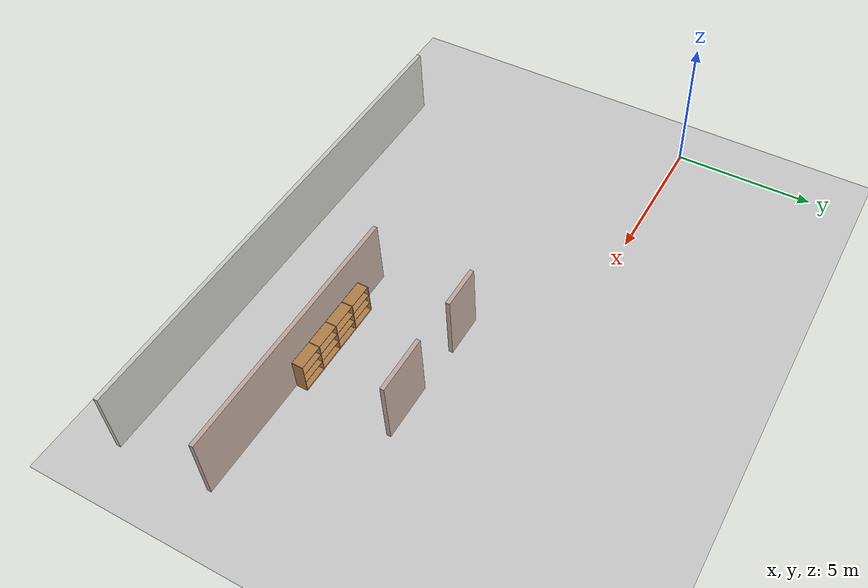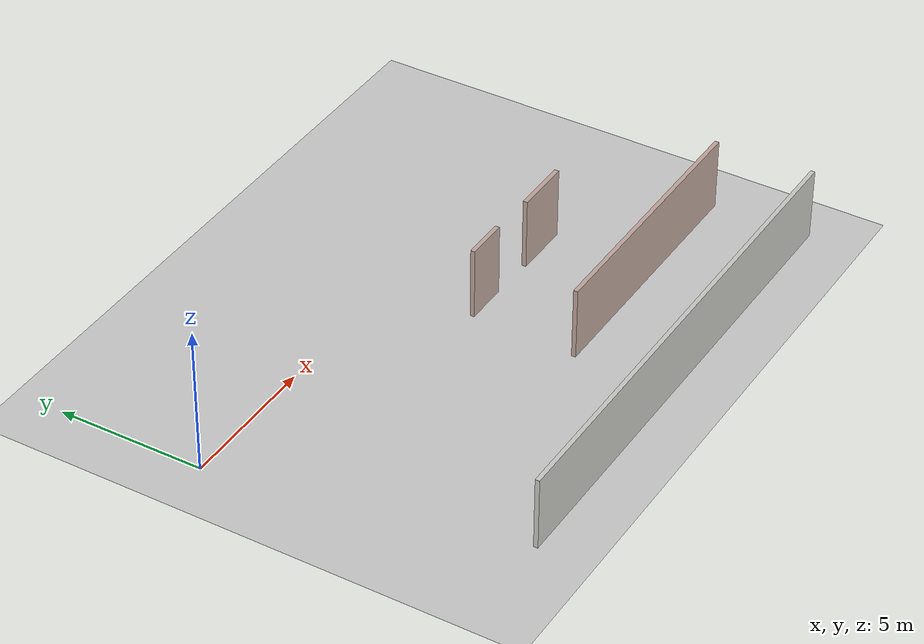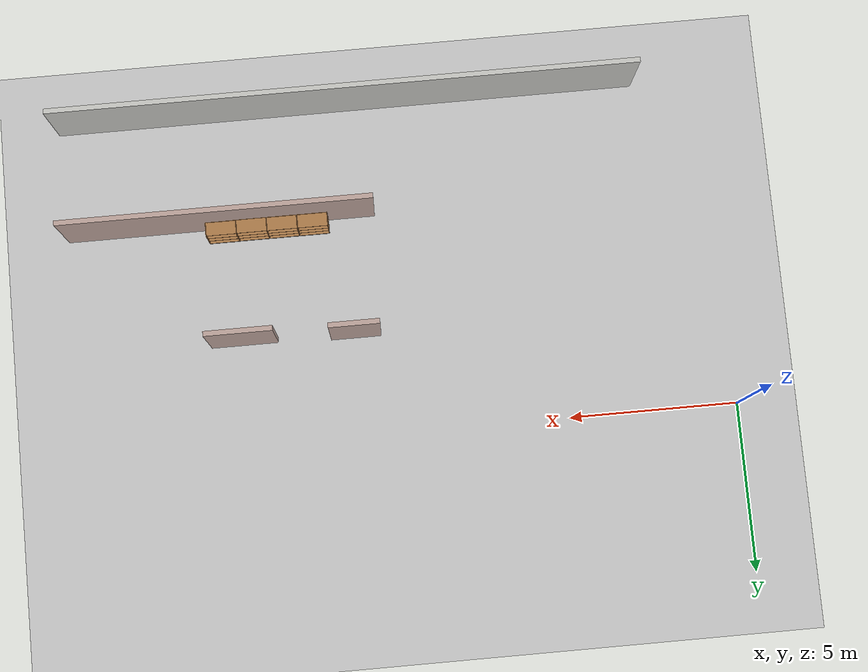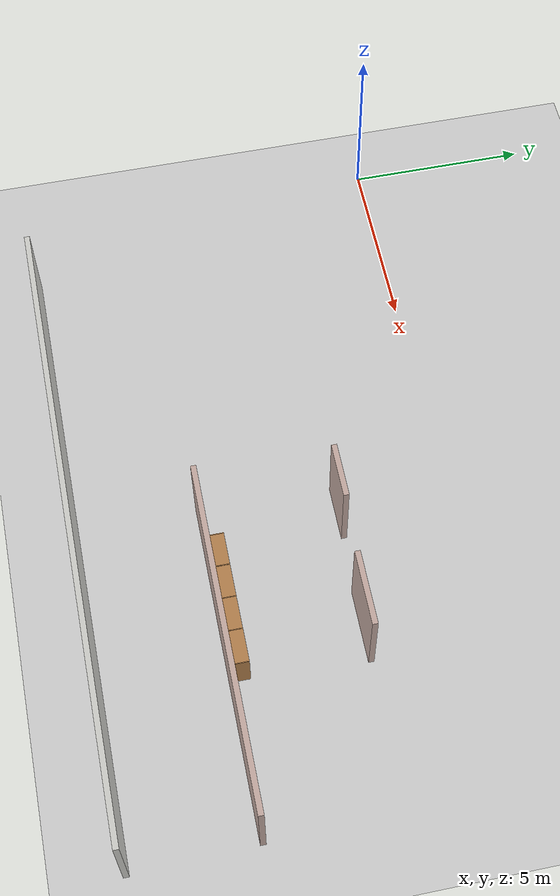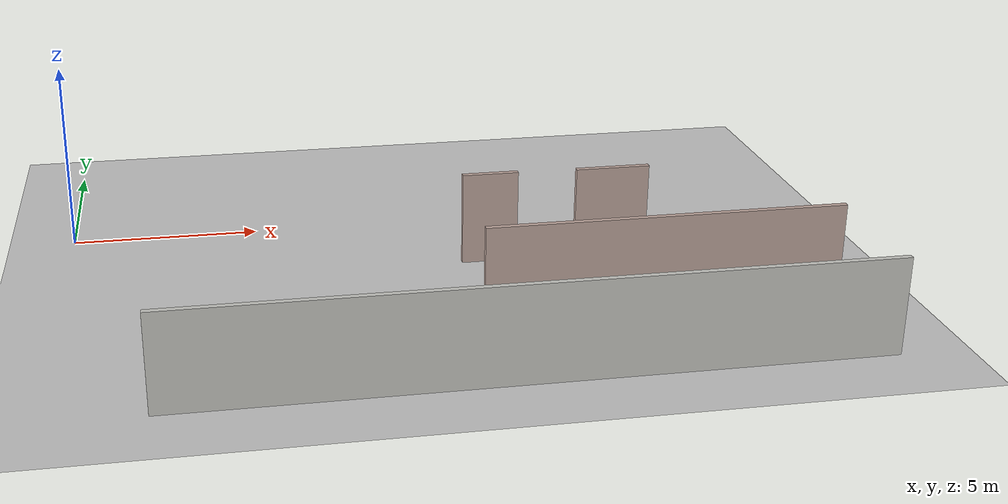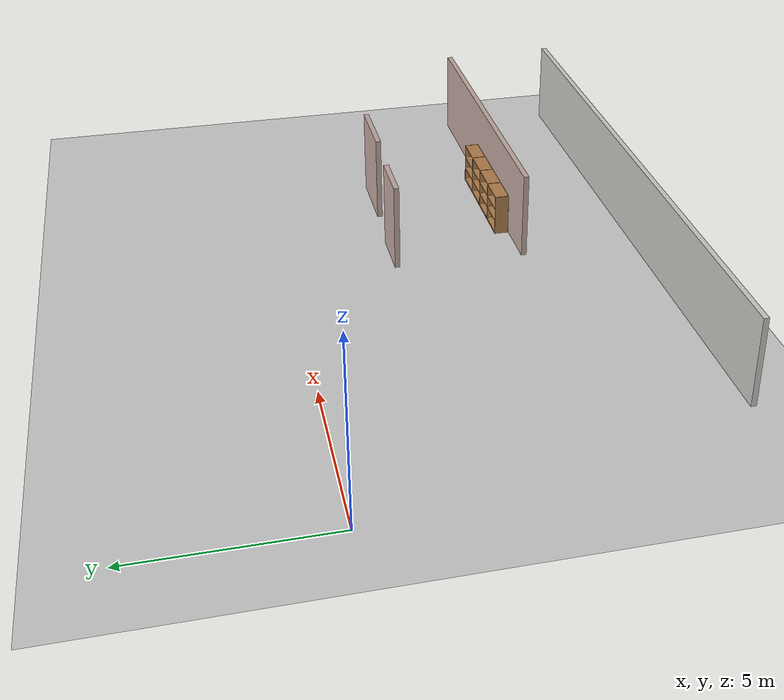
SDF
<sdf version="1.6">
 <world name="default">
  <model name="ground_plane">
   <static>1</static>
   <link name="link">
    <collision name="collision">
     <geometry><plane><normal>0 0 1</normal><size>100 100</size></plane></geometry>
     <surface><friction><ode><mu>100</mu><mu2>50</mu2></ode></friction></surface>
    </collision>
    <visual name="visual">
     <cast_shadows>0</cast_shadows>
     <geometry><plane><normal>0 0 1</normal><size>100 100</size></plane></geometry>
     <material>
      <script><uri>file://media/materials/scripts/gazebo.material</uri><name>Gazebo/Grey</name></script>
     </material>
    </visual>
   </link>
  </model>
  <model name="floor">
   <link name="Wall_113">
    <pose>9.60314 -8.79868 0 0 -0 0</pose>
    <visual name="Wall_113_Visual">
     <pose>0 0 1.25 0 -0 0</pose>
     <geometry><box><size>17.5 0.15 2.5</size></box></geometry>
     <material>
      <script><uri>file://media/materials/scripts/gazebo.material</uri><name>Gazebo/CeilingTiled</name></script>
      <ambient>0.760784 0.662745 0.627451 1</ambient>
     </material>
     <meta><layer>0</layer></meta>
    </visual>
    <collision name="Wall_113_Collision">
     <pose>0 0 1.25 0 -0 0</pose>
     <geometry><box><size>17.5 0.15 2.5</size></box></geometry>
     <surface>
      <friction>
       <ode><mu>1</mu><mu2>1</mu2><fdir1>0 0 0</fdir1><slip1>0</slip1><slip2>0</slip2></ode>
       <torsional>
        <coefficient>1</coefficient>
        <patch_radius>0</patch_radius>
        <surface_radius>0</surface_radius>
        <use_patch_radius>1</use_patch_radius>
        <ode><slip>0</slip></ode>
       </torsional>
      </friction>
      <bounce><restitution_coefficient>0</restitution_coefficient><threshold>1e+06</threshold></bounce>
      <contact>
       <collide_without_contact>0</collide_without_contact>
       <collide_without_contact_bitmask>1</collide_without_contact_bitmask>
       <collide_bitmask>1</collide_bitmask>
       <ode>
        <soft_cfm>0</soft_cfm>
        <soft_erp>0.2</soft_erp>
        <kp>1e+13</kp>
        <kd>1</kd>
        <max_vel>0.01</max_vel>
        <min_depth>0</min_depth>
       </ode>
       <bullet>
        <split_impulse>1</split_impulse>
        <split_impulse_penetration_threshold>-0.01</split_impulse_penetration_threshold>
        <soft_cfm>0</soft_cfm>
        <soft_erp>0.2</soft_erp>
        <kp>1e+13</kp>
        <kd>1</kd>
       </bullet>
      </contact>
     </surface>
    </collision>
   </link>
   <link name="Wall_84">
    <pose>13.6227 -5.45292 0 0 -0 0</pose>
    <visual name="Wall_84_Visual">
     <pose>0 0 1.25 0 -0 0</pose>
     <geometry><box><size>9.25 0.15 2.5</size></box></geometry>
     <material>
      <script><uri>file://media/materials/scripts/gazebo.material</uri><name>Gazebo/Grey</name></script>
      <ambient>0.760784 0.662745 0.627451 1</ambient>
     </material>
     <meta><layer>0</layer></meta>
    </visual>
    <collision name="Wall_84_Collision">
     <pose>0 0 1.25 0 -0 0</pose>
     <geometry><box><size>9.25 0.15 2.5</size></box></geometry>
     <surface>
      <friction>
       <ode><mu>1</mu><mu2>1</mu2><fdir1>0 0 0</fdir1><slip1>0</slip1><slip2>0</slip2></ode>
       <torsional>
        <coefficient>1</coefficient>
        <patch_radius>0</patch_radius>
        <surface_radius>0</surface_radius>
        <use_patch_radius>1</use_patch_radius>
        <ode><slip>0</slip></ode>
       </torsional>
      </friction>
      <bounce><restitution_coefficient>0</restitution_coefficient><threshold>1e+06</threshold></bounce>
      <contact>
       <collide_without_contact>0</collide_without_contact>
       <collide_without_contact_bitmask>1</collide_without_contact_bitmask>
       <collide_bitmask>1</collide_bitmask>
       <ode>
        <soft_cfm>0</soft_cfm>
        <soft_erp>0.2</soft_erp>
        <kp>1e+13</kp>
        <kd>1</kd>
        <max_vel>0.01</max_vel>
        <min_depth>0</min_depth>
       </ode>
       <bullet>
        <split_impulse>1</split_impulse>
        <split_impulse_penetration_threshold>-0.01</split_impulse_penetration_threshold>
        <soft_cfm>0</soft_cfm>
        <soft_erp>0.2</soft_erp>
        <kp>1e+13</kp>
        <kd>1</kd>
       </bullet>
      </contact>
     </surface>
    </collision>
   </link>
   <link name="Wall_92">
    <pose>9.86715 -1.78176 0 0 -0 0</pose>
    <visual name="Wall_92_Visual">
     <pose>0 0 1.25 0 -0 0</pose>
     <geometry><box><size>1.5 0.15 2.5</size></box></geometry>
     <material>
      <script><uri>file://media/materials/scripts/gazebo.material</uri><name>Gazebo/Grey</name></script>
      <ambient>0.760784 0.662745 0.627451 1</ambient>
     </material>
     <meta><layer>0</layer></meta>
    </visual>
    <collision name="Wall_92_Collision">
     <pose>0 0 1.25 0 -0 0</pose>
     <geometry><box><size>1.5 0.15 2.5</size></box></geometry>
     <surface>
      <friction>
       <ode><mu>1</mu><mu2>1</mu2><fdir1>0 0 0</fdir1><slip1>0</slip1><slip2>0</slip2></ode>
       <torsional>
        <coefficient>1</coefficient>
        <patch_radius>0</patch_radius>
        <surface_radius>0</surface_radius>
        <use_patch_radius>1</use_patch_radius>
        <ode><slip>0</slip></ode>
       </torsional>
      </friction>
      <bounce><restitution_coefficient>0</restitution_coefficient><threshold>1e+06</threshold></bounce>
      <contact>
       <collide_without_contact>0</collide_without_contact>
       <collide_without_contact_bitmask>1</collide_without_contact_bitmask>
       <collide_bitmask>1</collide_bitmask>
       <ode>
        <soft_cfm>0</soft_cfm>
        <soft_erp>0.2</soft_erp>
        <kp>1e+13</kp>
        <kd>1</kd>
        <max_vel>0.01</max_vel>
        <min_depth>0</min_depth>
       </ode>
       <bullet>
        <split_impulse>1</split_impulse>
        <split_impulse_penetration_threshold>-0.01</split_impulse_penetration_threshold>
        <soft_cfm>0</soft_cfm>
        <soft_erp>0.2</soft_erp>
        <kp>1e+13</kp>
        <kd>1</kd>
       </bullet>
      </contact>
     </surface>
    </collision>
   </link>
   <link name="Wall_94">
    <pose>13.1977 -1.85292 0 0 -0 0</pose>
    <visual name="Wall_94_Visual">
     <pose>0 0 1.25 0 -0 0</pose>
     <geometry><box><size>2 0.15 2.5</size></box></geometry>
     <material>
      <script><uri>file://media/materials/scripts/gazebo.material</uri><name>Gazebo/Grey</name></script>
      <ambient>0.760784 0.662745 0.627451 1</ambient>
     </material>
     <meta><layer>0</layer></meta>
    </visual>
    <collision name="Wall_94_Collision">
     <pose>0 0 1.25 0 -0 0</pose>
     <geometry><box><size>2 0.15 2.5</size></box></geometry>
     <surface>
      <friction>
       <ode><mu>1</mu><mu2>1</mu2><fdir1>0 0 0</fdir1><slip1>0</slip1><slip2>0</slip2></ode>
       <torsional>
        <coefficient>1</coefficient>
        <patch_radius>0</patch_radius>
        <surface_radius>0</surface_radius>
        <use_patch_radius>1</use_patch_radius>
        <ode><slip>0</slip></ode>
       </torsional>
      </friction>
      <bounce><restitution_coefficient>0</restitution_coefficient><threshold>1e+06</threshold></bounce>
      <contact>
       <collide_without_contact>0</collide_without_contact>
       <collide_without_contact_bitmask>1</collide_without_contact_bitmask>
       <collide_bitmask>1</collide_bitmask>
       <ode>
        <soft_cfm>0</soft_cfm>
        <soft_erp>0.2</soft_erp>
        <kp>1e+13</kp>
        <kd>1</kd>
        <max_vel>0.01</max_vel>
        <min_depth>0</min_depth>
       </ode>
       <bullet>
        <split_impulse>1</split_impulse>
        <split_impulse_penetration_threshold>-0.01</split_impulse_penetration_threshold>
        <soft_cfm>0</soft_cfm>
        <soft_erp>0.2</soft_erp>
        <kp>1e+13</kp>
        <kd>1</kd>
       </bullet>
      </contact>
     </surface>
    </collision>
   </link>
   <static>1</static>
   <pose>1.26361 -1.27025 0 0 -0 0</pose>
  </model>
  <model name="Bookshelf-4_clone_15_clone_clone_0">
   <model name="bookshelf">
    <static>1</static>
    <link name="link">
     <inertial><mass>1</mass></inertial>
     <collision name="back">
      <pose>0 0.005 0.6 0 -0 0</pose>
      <geometry><box><size>0.9 0.01 1.2</size></box></geometry>
     </collision>
     <visual name="visual1">
      <pose>0 0.005 0.6 0 -0 0</pose>
      <geometry><box><size>0.9 0.01 1.2</size></box></geometry>
      <material>
       <script><uri>file://media/materials/scripts/gazebo.material</uri><name>Gazebo/Wood</name></script>
      </material>
     </visual>
     <collision name="left_side">
      <pose>0.45 -0.195 0.6 0 -0 0</pose>
      <geometry><box><size>0.02 0.4 1.2</size></box></geometry>
     </collision>
     <visual name="visual2">
      <pose>0.45 -0.195 0.6 0 -0 0</pose>
      <geometry><box><size>0.02 0.4 1.2</size></box></geometry>
      <material>
       <script><uri>file://media/materials/scripts/gazebo.material</uri><name>Gazebo/Wood</name></script>
      </material>
     </visual>
     <collision name="right_side">
      <pose>-0.45 -0.195 0.6 0 -0 0</pose>
      <geometry><box><size>0.02 0.4 1.2</size></box></geometry>
     </collision>
     <visual name="visual3">
      <pose>-0.45 -0.195 0.6 0 -0 0</pose>
      <geometry><box><size>0.02 0.4 1.2</size></box></geometry>
      <material>
       <script><uri>file://media/materials/scripts/gazebo.material</uri><name>Gazebo/Wood</name></script>
      </material>
     </visual>
     <collision name="bottom">
      <pose>0 -0.195 0.03 0 -0 0</pose>
      <geometry><box><size>0.88 0.4 0.06</size></box></geometry>
     </collision>
     <visual name="visual4">
      <pose>0 -0.195 0.03 0 -0 0</pose>
      <geometry><box><size>0.88 0.4 0.06</size></box></geometry>
      <material>
       <script><uri>file://media/materials/scripts/gazebo.material</uri><name>Gazebo/Wood</name></script>
      </material>
     </visual>
     <collision name="top">
      <pose>0 -0.195 1.19 0 -0 0</pose>
      <geometry><box><size>0.88 0.4 0.02</size></box></geometry>
     </collision>
     <visual name="visual5">
      <pose>0 -0.195 1.19 0 -0 0</pose>
      <geometry><box><size>0.88 0.4 0.02</size></box></geometry>
      <material>
       <script><uri>file://media/materials/scripts/gazebo.material</uri><name>Gazebo/Wood</name></script>
      </material>
     </visual>
     <collision name="low_shelf">
      <pose>0 -0.195 0.43 0 -0 0</pose>
      <geometry><box><size>0.88 0.4 0.02</size></box></geometry>
     </collision>
     <visual name="visual6">
      <pose>0 -0.195 0.43 0 -0 0</pose>
      <geometry><box><size>0.88 0.4 0.02</size></box></geometry>
      <material>
       <script><uri>file://media/materials/scripts/gazebo.material</uri><name>Gazebo/Wood</name></script>
      </material>
     </visual>
     <collision name="high_shelf">
      <pose>0 -0.195 0.8 0 -0 0</pose>
      <geometry><box><size>0.88 0.4 0.02</size></box></geometry>
     </collision>
     <visual name="visual7">
      <pose>0 -0.195 0.8 0 -0 0</pose>
      <geometry><box><size>0.88 0.4 0.02</size></box></geometry>
      <material>
       <script><uri>file://media/materials/scripts/gazebo.material</uri><name>Gazebo/Wood</name></script>
      </material>
     </visual>
    </link>
    <pose>-1.35671 -0.002097 0 0 -0 0</pose>
   </model>
   <model name="bookshelf_0">
    <static>1</static>
    <link name="link">
     <inertial><mass>1</mass></inertial>
     <collision name="back">
      <pose>0 0.005 0.6 0 -0 0</pose>
      <geometry><box><size>0.9 0.01 1.2</size></box></geometry>
     </collision>
     <visual name="visual1">
      <pose>0 0.005 0.6 0 -0 0</pose>
      <geometry><box><size>0.9 0.01 1.2</size></box></geometry>
      <material>
       <script><uri>file://media/materials/scripts/gazebo.material</uri><name>Gazebo/Wood</name></script>
      </material>
     </visual>
     <collision name="left_side">
      <pose>0.45 -0.195 0.6 0 -0 0</pose>
      <geometry><box><size>0.02 0.4 1.2</size></box></geometry>
     </collision>
     <visual name="visual2">
      <pose>0.45 -0.195 0.6 0 -0 0</pose>
      <geometry><box><size>0.02 0.4 1.2</size></box></geometry>
      <material>
       <script><uri>file://media/materials/scripts/gazebo.material</uri><name>Gazebo/Wood</name></script>
      </material>
     </visual>
     <collision name="right_side">
      <pose>-0.45 -0.195 0.6 0 -0 0</pose>
      <geometry><box><size>0.02 0.4 1.2</size></box></geometry>
     </collision>
     <visual name="visual3">
      <pose>-0.45 -0.195 0.6 0 -0 0</pose>
      <geometry><box><size>0.02 0.4 1.2</size></box></geometry>
      <material>
       <script><uri>file://media/materials/scripts/gazebo.material</uri><name>Gazebo/Wood</name></script>
      </material>
     </visual>
     <collision name="bottom">
      <pose>0 -0.195 0.03 0 -0 0</pose>
      <geometry><box><size>0.88 0.4 0.06</size></box></geometry>
     </collision>
     <visual name="visual4">
      <pose>0 -0.195 0.03 0 -0 0</pose>
      <geometry><box><size>0.88 0.4 0.06</size></box></geometry>
      <material>
       <script><uri>file://media/materials/scripts/gazebo.material</uri><name>Gazebo/Wood</name></script>
      </material>
     </visual>
     <collision name="top">
      <pose>0 -0.195 1.19 0 -0 0</pose>
      <geometry><box><size>0.88 0.4 0.02</size></box></geometry>
     </collision>
     <visual name="visual5">
      <pose>0 -0.195 1.19 0 -0 0</pose>
      <geometry><box><size>0.88 0.4 0.02</size></box></geometry>
      <material>
       <script><uri>file://media/materials/scripts/gazebo.material</uri><name>Gazebo/Wood</name></script>
      </material>
     </visual>
     <collision name="low_shelf">
      <pose>0 -0.195 0.43 0 -0 0</pose>
      <geometry><box><size>0.88 0.4 0.02</size></box></geometry>
     </collision>
     <visual name="visual6">
      <pose>0 -0.195 0.43 0 -0 0</pose>
      <geometry><box><size>0.88 0.4 0.02</size></box></geometry>
      <material>
       <script><uri>file://media/materials/scripts/gazebo.material</uri><name>Gazebo/Wood</name></script>
      </material>
     </visual>
     <collision name="high_shelf">
      <pose>0 -0.195 0.8 0 -0 0</pose>
      <geometry><box><size>0.88 0.4 0.02</size></box></geometry>
     </collision>
     <visual name="visual7">
      <pose>0 -0.195 0.8 0 -0 0</pose>
      <geometry><box><size>0.88 0.4 0.02</size></box></geometry>
      <material>
       <script><uri>file://media/materials/scripts/gazebo.material</uri><name>Gazebo/Wood</name></script>
      </material>
     </visual>
    </link>
    <pose>-0.452974 0.001386 0 0 -0 0</pose>
   </model>
   <model name="bookshelf_1">
    <static>1</static>
    <link name="link">
     <inertial><mass>1</mass></inertial>
     <collision name="back">
      <pose>0 0.005 0.6 0 -0 0</pose>
      <geometry><box><size>0.9 0.01 1.2</size></box></geometry>
     </collision>
     <visual name="visual1">
      <pose>0 0.005 0.6 0 -0 0</pose>
      <geometry><box><size>0.9 0.01 1.2</size></box></geometry>
      <material>
       <script><uri>file://media/materials/scripts/gazebo.material</uri><name>Gazebo/Wood</name></script>
      </material>
     </visual>
     <collision name="left_side">
      <pose>0.45 -0.195 0.6 0 -0 0</pose>
      <geometry><box><size>0.02 0.4 1.2</size></box></geometry>
     </collision>
     <visual name="visual2">
      <pose>0.45 -0.195 0.6 0 -0 0</pose>
      <geometry><box><size>0.02 0.4 1.2</size></box></geometry>
      <material>
       <script><uri>file://media/materials/scripts/gazebo.material</uri><name>Gazebo/Wood</name></script>
      </material>
     </visual>
     <collision name="right_side">
      <pose>-0.45 -0.195 0.6 0 -0 0</pose>
      <geometry><box><size>0.02 0.4 1.2</size></box></geometry>
     </collision>
     <visual name="visual3">
      <pose>-0.45 -0.195 0.6 0 -0 0</pose>
      <geometry><box><size>0.02 0.4 1.2</size></box></geometry>
      <material>
       <script><uri>file://media/materials/scripts/gazebo.material</uri><name>Gazebo/Wood</name></script>
      </material>
     </visual>
     <collision name="bottom">
      <pose>0 -0.195 0.03 0 -0 0</pose>
      <geometry><box><size>0.88 0.4 0.06</size></box></geometry>
     </collision>
     <visual name="visual4">
      <pose>0 -0.195 0.03 0 -0 0</pose>
      <geometry><box><size>0.88 0.4 0.06</size></box></geometry>
      <material>
       <script><uri>file://media/materials/scripts/gazebo.material</uri><name>Gazebo/Wood</name></script>
      </material>
     </visual>
     <collision name="top">
      <pose>0 -0.195 1.19 0 -0 0</pose>
      <geometry><box><size>0.88 0.4 0.02</size></box></geometry>
     </collision>
     <visual name="visual5">
      <pose>0 -0.195 1.19 0 -0 0</pose>
      <geometry><box><size>0.88 0.4 0.02</size></box></geometry>
      <material>
       <script><uri>file://media/materials/scripts/gazebo.material</uri><name>Gazebo/Wood</name></script>
      </material>
     </visual>
     <collision name="low_shelf">
      <pose>0 -0.195 0.43 0 -0 0</pose>
      <geometry><box><size>0.88 0.4 0.02</size></box></geometry>
     </collision>
     <visual name="visual6">
      <pose>0 -0.195 0.43 0 -0 0</pose>
      <geometry><box><size>0.88 0.4 0.02</size></box></geometry>
      <material>
       <script><uri>file://media/materials/scripts/gazebo.material</uri><name>Gazebo/Wood</name></script>
      </material>
     </visual>
     <collision name="high_shelf">
      <pose>0 -0.195 0.8 0 -0 0</pose>
      <geometry><box><size>0.88 0.4 0.02</size></box></geometry>
     </collision>
     <visual name="visual7">
      <pose>0 -0.195 0.8 0 -0 0</pose>
      <geometry><box><size>0.88 0.4 0.02</size></box></geometry>
      <material>
       <script><uri>file://media/materials/scripts/gazebo.material</uri><name>Gazebo/Wood</name></script>
      </material>
     </visual>
    </link>
    <pose>0.450456 0.000733 0 0 -0 0</pose>
   </model>
   <model name="bookshelf_2">
    <static>1</static>
    <link name="link">
     <inertial><mass>1</mass></inertial>
     <collision name="back">
      <pose>0 0.005 0.6 0 -0 0</pose>
      <geometry><box><size>0.9 0.01 1.2</size></box></geometry>
     </collision>
     <visual name="visual1">
      <pose>0 0.005 0.6 0 -0 0</pose>
      <geometry><box><size>0.9 0.01 1.2</size></box></geometry>
      <material>
       <script><uri>file://media/materials/scripts/gazebo.material</uri><name>Gazebo/Wood</name></script>
      </material>
     </visual>
     <collision name="left_side">
      <pose>0.45 -0.195 0.6 0 -0 0</pose>
      <geometry><box><size>0.02 0.4 1.2</size></box></geometry>
     </collision>
     <visual name="visual2">
      <pose>0.45 -0.195 0.6 0 -0 0</pose>
      <geometry><box><size>0.02 0.4 1.2</size></box></geometry>
      <material>
       <script><uri>file://media/materials/scripts/gazebo.material</uri><name>Gazebo/Wood</name></script>
      </material>
     </visual>
     <collision name="right_side">
      <pose>-0.45 -0.195 0.6 0 -0 0</pose>
      <geometry><box><size>0.02 0.4 1.2</size></box></geometry>
     </collision>
     <visual name="visual3">
      <pose>-0.45 -0.195 0.6 0 -0 0</pose>
      <geometry><box><size>0.02 0.4 1.2</size></box></geometry>
      <material>
       <script><uri>file://media/materials/scripts/gazebo.material</uri><name>Gazebo/Wood</name></script>
      </material>
     </visual>
     <collision name="bottom">
      <pose>0 -0.195 0.03 0 -0 0</pose>
      <geometry><box><size>0.88 0.4 0.06</size></box></geometry>
     </collision>
     <visual name="visual4">
      <pose>0 -0.195 0.03 0 -0 0</pose>
      <geometry><box><size>0.88 0.4 0.06</size></box></geometry>
      <material>
       <script><uri>file://media/materials/scripts/gazebo.material</uri><name>Gazebo/Wood</name></script>
      </material>
     </visual>
     <collision name="top">
      <pose>0 -0.195 1.19 0 -0 0</pose>
      <geometry><box><size>0.88 0.4 0.02</size></box></geometry>
     </collision>
     <visual name="visual5">
      <pose>0 -0.195 1.19 0 -0 0</pose>
      <geometry><box><size>0.88 0.4 0.02</size></box></geometry>
      <material>
       <script><uri>file://media/materials/scripts/gazebo.material</uri><name>Gazebo/Wood</name></script>
      </material>
     </visual>
     <collision name="low_shelf">
      <pose>0 -0.195 0.43 0 -0 0</pose>
      <geometry><box><size>0.88 0.4 0.02</size></box></geometry>
     </collision>
     <visual name="visual6">
      <pose>0 -0.195 0.43 0 -0 0</pose>
      <geometry><box><size>0.88 0.4 0.02</size></box></geometry>
      <material>
       <script><uri>file://media/materials/scripts/gazebo.material</uri><name>Gazebo/Wood</name></script>
      </material>
     </visual>
     <collision name="high_shelf">
      <pose>0 -0.195 0.8 0 -0 0</pose>
      <geometry><box><size>0.88 0.4 0.02</size></box></geometry>
     </collision>
     <visual name="visual7">
      <pose>0 -0.195 0.8 0 -0 0</pose>
      <geometry><box><size>0.88 0.4 0.02</size></box></geometry>
      <material>
       <script><uri>file://media/materials/scripts/gazebo.material</uri><name>Gazebo/Wood</name></script>
      </material>
     </visual>
    </link>
    <pose>1.35922 -1.7e-05 0 0 -0 0</pose>
   </model>
   <static>0</static>
   <pose>13.4751 -6.62829 0 0 -0 3.14159</pose>
  </model>
 </world>
</sdf>
